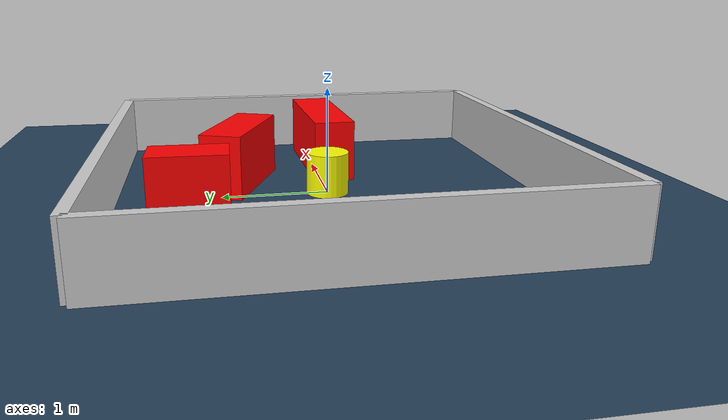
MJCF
<?xml version="1.0" ?>
<mujoco model="generated_environment">
  <option timestep="0.01" integrator="RK4" cone="elliptic"/>
  <default>
    <geom density="1"/>
  </default>
  <asset>
    <texture builtin="gradient" height="3072" rgb1="0.3 0.5 0.7" rgb2="0 0 0" type="skybox" width="512"/>
    <texture builtin="checker" height="300" mark="edge" markrgb="0.8 0.8 0.8" name="groundplane" rgb1="0.2 0.3 0.4" rgb2="0.1 0.2 0.3" type="2d" width="300"/>
    <material name="groundplane" reflectance="0.2" texrepeat="5 5" texture="groundplane" texuniform="true"/>
    <material name="robot" rgba="0.0 1.0 0.0 1"/>
  </asset>
  <worldbody>
    <light dir="0 0 -1" directional="true" pos="0 0 1.5"/>
    <geom condim="4" friction="1.0 0.005 0.001" material="groundplane" name="floor" size="0 0 0.05" type="plane"/>
    <body name="walls">
      <geom name="wall_1" condim="4" pos="-2.0 0.0 0.3" rgba="0.800000011920929 0.800000011920929 0.800000011920929 1.0" size="0.05 2.0 0.3" type="box"/>
      <geom name="wall_2" condim="4" pos="2.0 0.0 0.3" rgba="0.800000011920929 0.800000011920929 0.800000011920929 1.0" size="0.05 2.0 0.3" type="box"/>
      <geom name="wall_3" condim="4" pos="0.0 -2.0 0.3" rgba="0.800000011920929 0.800000011920929 0.800000011920929 1.0" size="2.0 0.05 0.3" type="box"/>
      <geom name="wall_4" condim="4" pos="0.0 2.0 0.3" rgba="0.800000011920929 0.800000011920929 0.800000011920929 1.0" size="2.0 0.05 0.3" type="box"/>
    </body>
    <body name="robot">
      <joint name="joint_x" type="slide" pos="0 0 0" axis="1 0 0"/>
      <joint name="joint_y" type="slide" pos="0 0 0" axis="0 1 0"/>
      <geom name="robot" type="sphere" pos="0.3 0.0 0.2" size="0.05" mass="5." friction="1.0 0.005 0.0001" condim="4" rgba="0.5 0.5 0.5 1.0"/>
      <site name="sensor_ball"/>
    </body>
    <body name="obstacle_movable_1">
      <geom name="obstacle_movable_1" condim="4" pos="0.0 0.0 0.2" euler="0 0 0.0" friction="1.0 0.005 0.001" rgba="1.0 1.0 0.0 1.0" size="0.2 0.2 0.0" type="cylinder" mass="0.1"/>
      <joint type="free"/>
    </body>
    <body name="obstacle_2_static">
      <geom name="obstacle_2_static" condim="4" pos="-0.5153334619676413 1.2707940398735615 0.3" euler="0 0 88.8045798496736" friction="1.0 0.005 0.001" rgba="1 0 0 1" size="0.34429843431411555 0.2 0.3" type="box"/>
    </body>
    <body name="obstacle_3_static">
      <geom name="obstacle_3_static" condim="4" pos="0.4444768471015357 0.8051297592458535 0.3" euler="0 0 337.81312294170596" friction="1.0 0.005 0.001" rgba="1 0 0 1" size="0.5273735146668896 0.2 0.3" type="box"/>
    </body>
    <body name="obstacle_4_static">
      <geom name="obstacle_4_static" condim="4" pos="1.0423763558527945 -0.10969166592645796 0.3" euler="0 0 2.1872435759061837" friction="1.0 0.005 0.001" rgba="1 0 0 1" size="0.6861663118788524 0.2 0.3" type="box"/>
    </body>
  </worldbody>
  <actuator>
    <motor name="actuator_x" joint="joint_x" gear="1" ctrlrange="-1 1"/>
    <motor name="actuator_y" joint="joint_y" gear="1" ctrlrange="-1 1"/>
  </actuator>
</mujoco>
